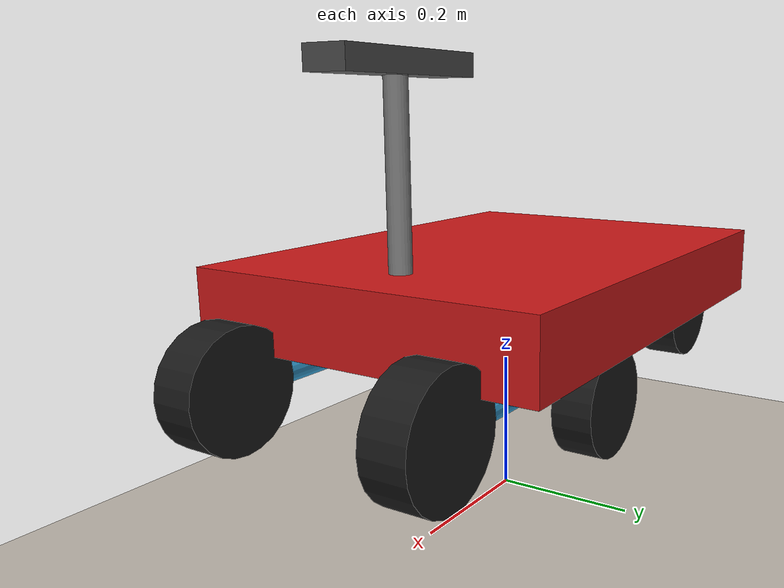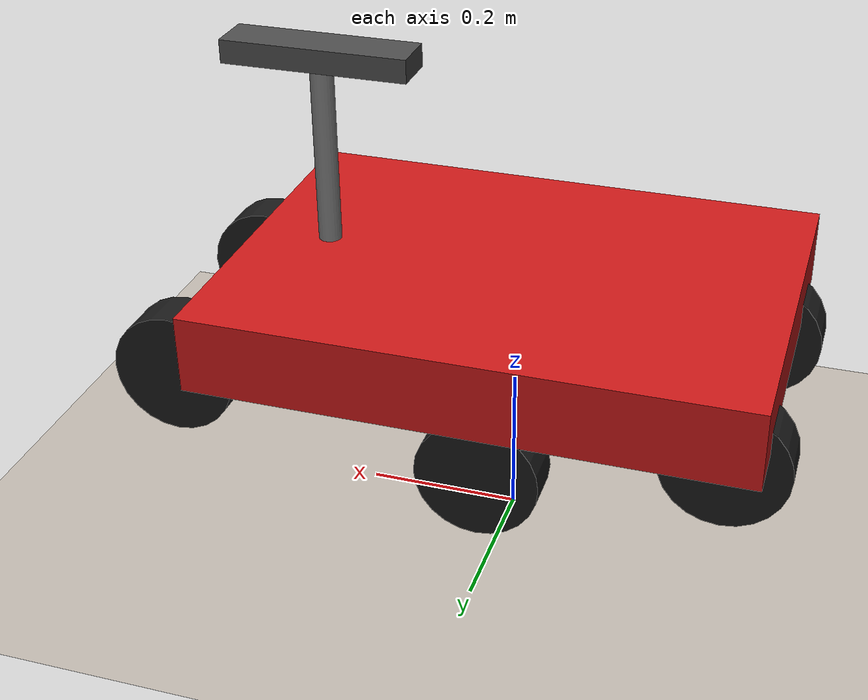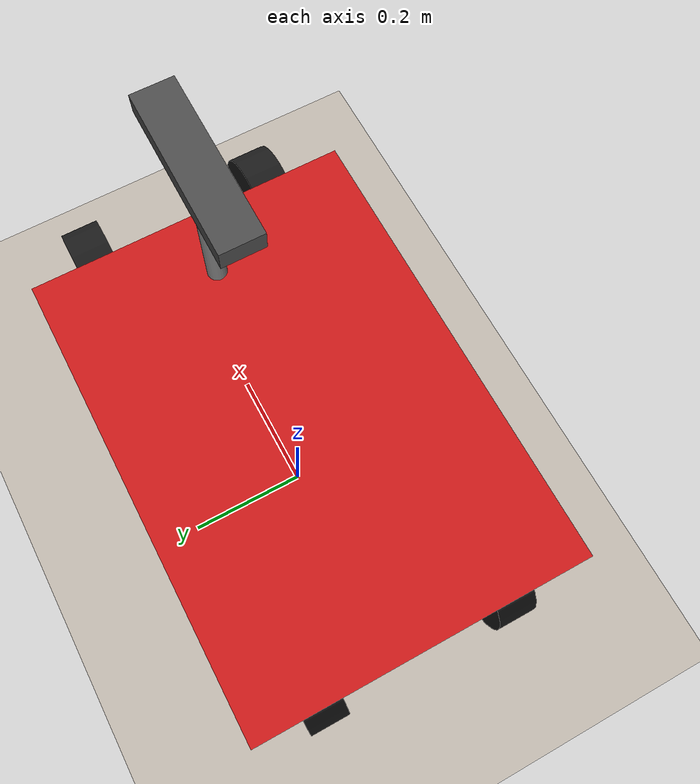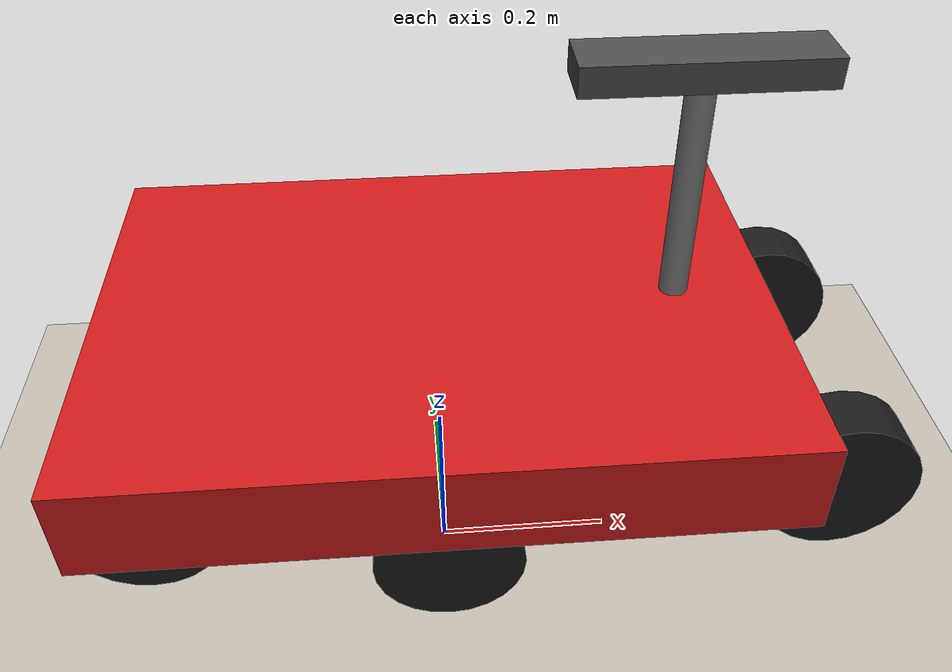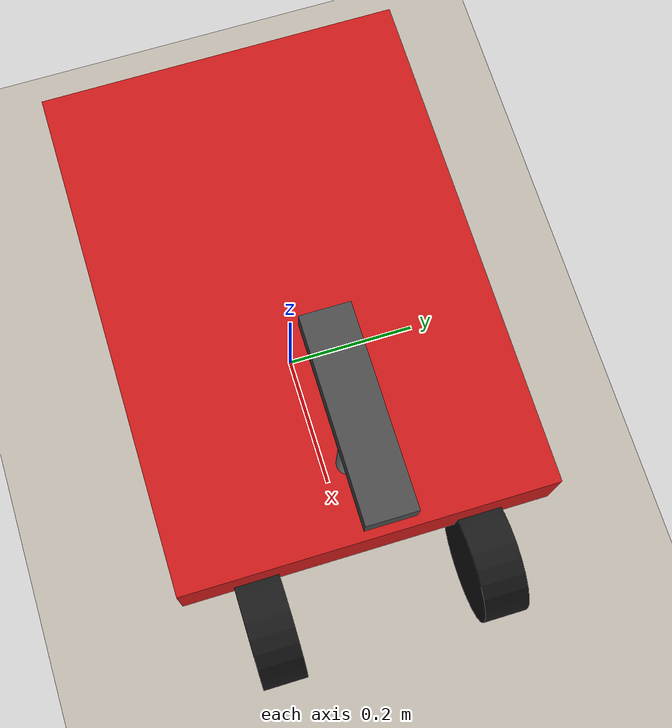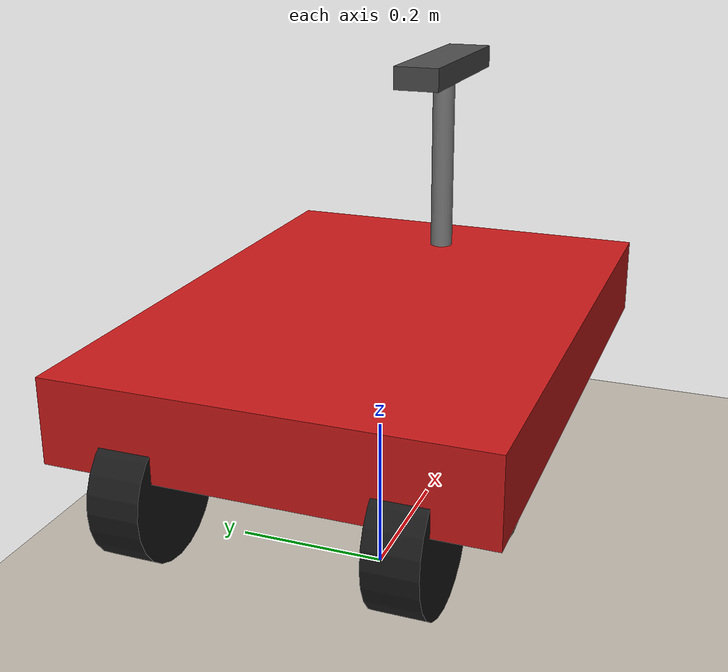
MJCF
<mujoco model="rocker_bogie_6joint">
  <compiler angle="degree" coordinate="local" inertiafromgeom="true"/>
  <option gravity="0 0 -1.658" integrator="RK4" timestep="0.001"/>

  <default>
    <geom contype="1" conaffinity="1" friction="1 0.1 0.1"/>
    <joint damping="0.1" armature="0.01"/>
  </default>

  <!-- Assets -->
  <asset>
    <texture name="terrain_tex" type="2d" file="terrain.png"/>
    <texture name="terrain_fallback" type="2d" builtin="checker" width="512" height="512" rgb1="0.4 0.3 0.2" rgb2="0.3 0.2 0.1"/>
    <material name="terrain_mat" texture="terrain_tex" texrepeat="10 10"/>
    <material name="chassis_mat" rgba="0.8 0.1 0.1 1"/>
    <material name="rocker_mat" rgba="0.2 0.6 0.8 1"/>
    <material name="bogie_mat" rgba="0.3 0.8 0.3 1"/>
    <material name="wheel_mat" rgba="0.1 0.1 0.1 1"/>
    <material name="diff_mat" rgba="0.9 0.7 0.1 1"/>
  </asset>

  <!-- Ground -->
  <worldbody>
    <light pos="0 0 3" dir="0 0 -1" diffuse="0.8 0.8 0.8"/>
    <geom name="ground" type="plane" size="20 20 0.1" material="terrain_mat"/>

    <!-- Chassis (Main Body) -->
    <body name="chassis" pos="0 0 0.32">
      <freejoint/>
      <geom name="chassis_main" type="box" size="0.35 0.25 0.05" rgba="0.8 0.1 0.1 1" mass="10"/>
      <inertial pos="0 0 0" mass="10" diaginertia="0.2 0.3 0.4"/>

      <!-- Stereo Camera Mast (rigidly attached to chassis, no joint) -->
      <body name="camera_mast" pos="0.25 0 0.05">
        <geom name="mast" type="cylinder" fromto="0 0 0 0 0 0.25" size="0.015" rgba="0.5 0.5 0.5 1" mass="0.3"/>
        <inertial pos="0 0 0.125" mass="0.3" diaginertia="0.003 0.003 0.0001"/>

        <!-- Stereo Camera Bar (at top of mast) -->
        <body name="stereo_bar" pos="0 0 0.25">
          <geom name="camera_bar" type="box" size="0.12 0.03 0.015" rgba="0.3 0.3 0.3 1" mass="0.2"/>
          <inertial pos="0 0 0" mass="0.2" diaginertia="0.001 0.001 0.001"/>

          <!-- Left Camera -->
          <camera name="stereo_left" pos="0 0.06 0" quat="0.707 0 0.707 0" fovy="60" mode="fixed"/>

          <!-- Right Camera -->
          <camera name="stereo_right" pos="0 -0.06 0" quat="0.707 0 0.707 0" fovy="60" mode="fixed"/>

          <!-- Center Camera (optional, for navigation) -->
        </body>
      </body>

      <!-- Site for IMU sensors -->
      <site name="chassis" pos="0 0 0" size="0.01"/>

      <!-- Differential Bar (connects left and right rockers) -->
      <body name="differential_bar" pos="0 0 -0.08">
        <geom name="diff_bar" type="cylinder" fromto="0 -0.18 0 0 0.18 0" size="0.015" material="diff_mat" mass="0.5"/>
        <inertial pos="0 0 0" mass="0.5" diaginertia="0.01 0.01 0.001"/>

        <!-- LEFT SIDE -->
        <!-- Left Rocker (front part of suspension) -->
        <body name="rocker_left" pos="0 0.15 0">
          <joint name="rocker_left_joint" type="hinge" axis="0 1 0" range="-45 45" damping="0.5"/>
          <geom name="rocker_left_link" type="capsule" fromto="0 0 0 0.4 0 0" size="0.02" material="rocker_mat" mass="1.5"/>
          <inertial pos="0.2 0 0" mass="1.5" diaginertia="0.02 0.02 0.001"/>

          <!-- Front Wheel (at front end of rocker) -->
          <body name="wheel_front_left" pos="0.4 0 0">
            <joint name="wheel_front_left_joint" type="hinge" axis="0 1 0" damping="0.05"/>
            <geom name="wheel_fl" type="cylinder" size="0.08 0.03" material="wheel_mat" mass="0.5" euler="90 0 0"/>
            <inertial pos="0 0 0" mass="0.5" diaginertia="0.002 0.002 0.002"/>
          </body>

          <!-- Middle Wheel (at rocker pivot point, where bogie attaches) -->

          <body name="wheel_middle_left" pos="0 0 -0.08">
  <joint name="wheel_middle_left_joint" type="hinge" axis="0 1 0" damping="0.05"/>
  <geom name="wheel_ml" type="cylinder" size="0.08 0.03" material="wheel_mat" mass="0.5" euler="90 0 0"/>
  <inertial pos="0 0 0" mass="0.5" diaginertia="0.002 0.002 0.002"/>
</body>

          <!-- Left Bogie (rear part of suspension, attached at rocker pivot) -->
          <body name="bogie_left" pos="0 0 0">
            <joint name="bogie_left_joint" type="hinge" axis="0 1 0" range="-45 45" damping="0.3"/>
            <geom name="bogie_left_link" type="capsule" fromto="0 0 0 -0.3 0 0" size="0.018" material="bogie_mat" mass="1.0"/>
            <inertial pos="-0.15 0 0" mass="1.0" diaginertia="0.01 0.01 0.001"/>

            <!-- Rear Wheel (at end of bogie) -->
            <body name="wheel_rear_left" pos="-0.3 0 0">
              <joint name="wheel_rear_left_joint" type="hinge" axis="0 1 0" damping="0.05"/>
              <geom name="wheel_rl" type="cylinder" size="0.08 0.03" material="wheel_mat" mass="0.5" euler="90 0 0"/>
              <inertial pos="0 0 0" mass="0.5" diaginertia="0.002 0.002 0.002"/>
            </body>
          </body>
        </body>

        <!-- RIGHT SIDE (mirror of left) -->
        <!-- Right Rocker -->
        <body name="rocker_right" pos="0 -0.15 0">
          <joint name="rocker_right_joint" type="hinge" axis="0 1 0" range="-45 45" damping="0.5"/>
          <geom name="rocker_right_link" type="capsule" fromto="0 0 0 0.4 0 0" size="0.02" material="rocker_mat" mass="1.5"/>
          <inertial pos="0.2 0 0" mass="1.5" diaginertia="0.02 0.02 0.001"/>

          <!-- Front Wheel -->
          <body name="wheel_front_right" pos="0.4 0 0">
            <joint name="wheel_front_right_joint" type="hinge" axis="0 1 0" damping="0.05"/>
            <geom name="wheel_fr" type="cylinder" size="0.08 0.03" material="wheel_mat" mass="0.5" euler="90 0 0"/>
            <inertial pos="0 0 0" mass="0.5" diaginertia="0.002 0.002 0.002"/>
          </body>

          <!-- Middle Wheel -->

<body name="wheel_middle_right" pos="0 0 -0.08">
  <joint name="wheel_middle_right_joint" type="hinge" axis="0 1 0" damping="0.05"/>
  <geom name="wheel_mr" type="cylinder" size="0.08 0.03" material="wheel_mat" mass="0.5" euler="90 0 0"/>
  <inertial pos="0 0 0" mass="0.5" diaginertia="0.002 0.002 0.002"/>
</body>
          <!-- Right Bogie -->
          <body name="bogie_right" pos="0 0 0">
            <joint name="bogie_right_joint" type="hinge" axis="0 1 0" range="-45 45" damping="0.3"/>
            <geom name="bogie_right_link" type="capsule" fromto="0 0 0 -0.3 0 0" size="0.018" material="bogie_mat" mass="1.0"/>
            <inertial pos="-0.15 0 0" mass="1.0" diaginertia="0.01 0.01 0.001"/>

            <!-- Rear Wheel -->
            <body name="wheel_rear_right" pos="-0.3 0 0">
              <joint name="wheel_rear_right_joint" type="hinge" axis="0 1 0" damping="0.05"/>
              <geom name="wheel_rr" type="cylinder" size="0.08 0.03" material="wheel_mat" mass="0.5" euler="90 0 0"/>
              <inertial pos="0 0 0" mass="0.5" diaginertia="0.002 0.002 0.002"/>
            </body>
          </body>
        </body>
      </body>
    </body>

    <!-- External Cameras for Visualization -->
  </worldbody>

  <!-- Actuators for driving wheels -->
  <actuator>
    <!-- Left Side Wheels -->
    <motor name="motor_fl" joint="wheel_front_left_joint" ctrlrange="-5 5" gear="20"/>
    <motor name="motor_ml" joint="wheel_middle_left_joint" ctrlrange="-5 5" gear="20"/>
    <motor name="motor_rl" joint="wheel_rear_left_joint" ctrlrange="-5 5" gear="20"/>

    <!-- Right Side Wheels -->
    <motor name="motor_fr" joint="wheel_front_right_joint" ctrlrange="-5 5" gear="20"/>
    <motor name="motor_mr" joint="wheel_middle_right_joint" ctrlrange="-5 5" gear="20"/>
    <motor name="motor_rr" joint="wheel_rear_right_joint" ctrlrange="-5 5" gear="20"/>
  </actuator>

  <!-- Sensors -->
  <sensor>
    <!-- Joint Position Sensors (for suspension joints) -->
    <jointpos name="rocker_left_pos" joint="rocker_left_joint"/>
    <jointpos name="rocker_right_pos" joint="rocker_right_joint"/>
    <jointpos name="bogie_left_pos" joint="bogie_left_joint"/>
    <jointpos name="bogie_right_pos" joint="bogie_right_joint"/>

    <!-- Wheel velocity sensors -->
    <jointvel name="wheel_fl_vel" joint="wheel_front_left_joint"/>
    <jointvel name="wheel_ml_vel" joint="wheel_middle_left_joint"/>
    <jointvel name="wheel_rl_vel" joint="wheel_rear_left_joint"/>
    <jointvel name="wheel_fr_vel" joint="wheel_front_right_joint"/>
    <jointvel name="wheel_mr_vel" joint="wheel_middle_right_joint"/>
    <jointvel name="wheel_rr_vel" joint="wheel_rear_right_joint"/>

    <!-- Chassis IMU -->
    <framepos name="chassis_pos" objtype="body" objname="chassis"/>
    <framequat name="chassis_quat" objtype="body" objname="chassis"/>
    <gyro name="chassis_gyro" site="chassis"/>
    <accelerometer name="chassis_accel" site="chassis"/>

    <!-- Stereo camera frame sensors (for getting camera poses) -->
    <framepos name="stereo_left_pos" objtype="camera" objname="stereo_left"/>
    <framequat name="stereo_left_quat" objtype="camera" objname="stereo_left"/>
    <framepos name="stereo_right_pos" objtype="camera" objname="stereo_right"/>
    <framequat name="stereo_right_quat" objtype="camera" objname="stereo_right"/>
  </sensor>
</mujoco>
